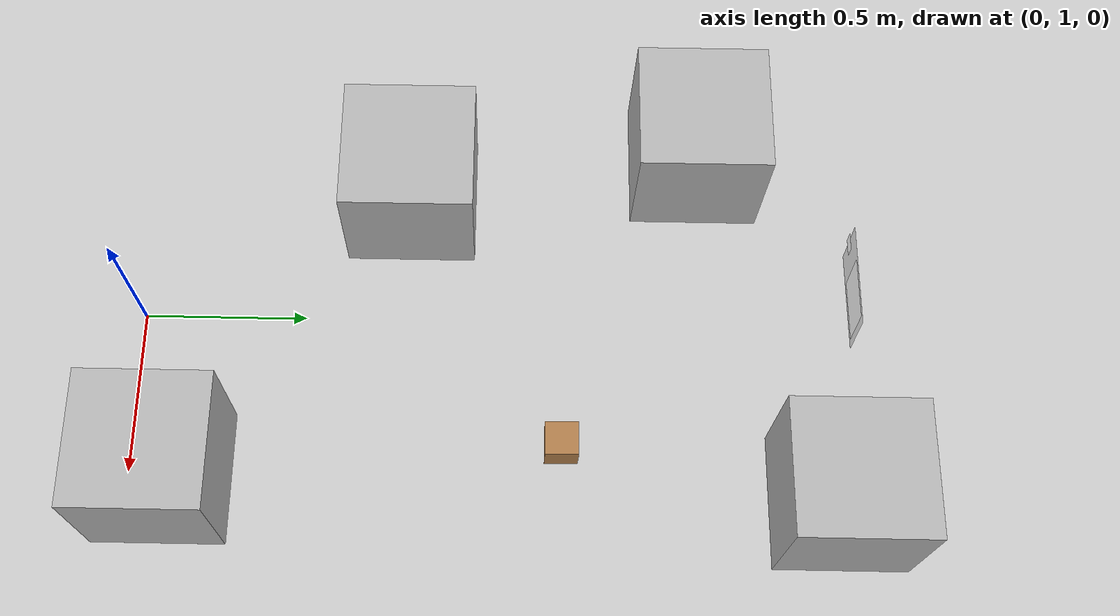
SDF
<sdf version="1.6">
 <world name="default">
  <light name="sun" type="directional">
   <pose>0 0 10 0 -0 0</pose>
   <diffuse>0.8 0.8 0.8 1</diffuse>
   <specular>0.1 0.1 0.1 1</specular>
   <attenuation>
    <range>1000</range>
    <constant>0.9</constant>
    <linear>0.01</linear>
    <quadratic>0.001</quadratic>
   </attenuation>
   <direction>-0.5 0.5 -1</direction>
  </light>
  <model name="ground_plane">
   <static>1</static>
   <link name="link">
    <collision name="collision">
     <geometry><plane><normal>0 0 1</normal><size>100 100</size></plane></geometry>
     <surface><friction><ode><mu>100</mu><mu2>50</mu2></ode></friction></surface>
    </collision>
    <visual name="visual">
     <cast_shadows>0</cast_shadows>
     <geometry><plane><normal>0 0 1</normal><size>100 100</size></plane></geometry>
     <material>
      <script><uri>file://media/materials/scripts/gazebo.material</uri><name>Gazebo/Grey</name></script>
     </material>
    </visual>
   </link>
  </model>
  <gravity>0 0 -9.8</gravity>
  <magnetic_field>6e-06 2.3e-05 -4.2e-05</magnetic_field>
  <atmosphere type="adiabatic"/>
  <physics name="default_physics" default="0" type="ode">
   <max_step_size>0.001</max_step_size>
   <real_time_factor>1</real_time_factor>
   <real_time_update_rate>1000</real_time_update_rate>
  </physics>
  <scene><ambient>0.4 0.4 0.4 1</ambient><background>0.7 0.7 0.7 1</background><shadows>1</shadows></scene>
  <spherical_coordinates>
   <surface_model>EARTH_WGS84</surface_model>
   <latitude_deg>0</latitude_deg>
   <longitude_deg>0</longitude_deg>
   <elevation>0</elevation>
   <heading_deg>0</heading_deg>
  </spherical_coordinates>
  <model name="cardboard_box">
   <pose>-0.407426 1.8165 0.149 0 -0 0</pose>
   <link name="link">
    <inertial>
     <mass>2</mass>
     <inertia>
      <ixx>0.0416667</ixx>
      <ixy>0</ixy>
      <ixz>0</ixz>
      <iyy>0.0566667</iyy>
      <iyz>0</iyz>
      <izz>0.0683333</izz>
     </inertia>
    </inertial>
    <collision name="collision">
     <geometry><box><size>0.5 0.4 0.3</size></box></geometry>
     <surface>
      <friction><ode><mu>1</mu><mu2>1</mu2></ode></friction>
      <contact><ode><kp>1e+07</kp><kd>1</kd><min_depth>0.001</min_depth><max_vel>0.1</max_vel></ode></contact>
     </surface>
    </collision>
    <visual name="visual">
     <pose>0 0 -0.15 0 -0 0</pose>
     <geometry>
      <mesh><uri>model://cardboard_box/meshes/cardboard_box.dae</uri><scale>1 1 1</scale></mesh>
     </geometry>
    </visual>
   </link>
  </model>
  <model name="cardboard_box_0">
   <pose>0.516479 1.11035 0.149 0 -0 0</pose>
   <link name="link">
    <inertial>
     <mass>2</mass>
     <inertia>
      <ixx>0.0416667</ixx>
      <ixy>0</ixy>
      <ixz>0</ixz>
      <iyy>0.0566667</iyy>
      <iyz>0</iyz>
      <izz>0.0683333</izz>
     </inertia>
    </inertial>
    <collision name="collision">
     <geometry><box><size>0.5 0.4 0.3</size></box></geometry>
     <surface>
      <friction><ode><mu>1</mu><mu2>1</mu2></ode></friction>
      <contact><ode><kp>1e+07</kp><kd>1</kd><min_depth>0.001</min_depth><max_vel>0.1</max_vel></ode></contact>
     </surface>
    </collision>
    <visual name="visual">
     <pose>0 0 -0.15 0 -0 0</pose>
     <geometry>
      <mesh><uri>model://cardboard_box/meshes/cardboard_box.dae</uri><scale>1 1 1</scale></mesh>
     </geometry>
    </visual>
   </link>
  </model>
  <model name="wood_cube_10cm">
   <link name="link">
    <pose>0 0 0.05 0 -0 0</pose>
    <inertial>
     <mass>0.5167</mass>
     <inertia>
      <ixx>0.000861167</ixx>
      <ixy>0</ixy>
      <ixz>0</ixz>
      <iyy>0.000861167</iyy>
      <iyz>0</iyz>
      <izz>0.000861167</izz>
     </inertia>
    </inertial>
    <collision name="collision">
     <geometry><box><size>0.1 0.1 0.1</size></box></geometry>
     <surface>
      <contact>
       <poissons_ratio>0.347</poissons_ratio>
       <elastic_modulus>8.8e+09</elastic_modulus>
       <ode><kp>100000</kp><kd>100</kd><max_vel>100</max_vel><min_depth>0.001</min_depth></ode>
      </contact>
      <friction>
       <torsional>
        <coefficient>1</coefficient>
        <use_patch_radius>0</use_patch_radius>
        <surface_radius>0.01</surface_radius>
       </torsional>
      </friction>
     </surface>
    </collision>
    <visual name="visual">
     <geometry><box><size>0.1 0.1 0.1</size></box></geometry>
     <material>
      <script><uri>file://media/materials/scripts/gazebo.material</uri><name>Gazebo/Wood</name></script>
     </material>
    </visual>
   </link>
   <pose>0.402485 2.28925 -0.001013 0 -0 0</pose>
  </model>
  <model name="aruco_visual_marker_7_pad">
   <link name="aruco_visual_marker_7::marker">
    <visual name="visual">
     <geometry><box><size>0.1778 0.1778 1e-05</size></box></geometry>
     <material>
      <script>
       <uri>model://aruco_visual_marker_7/materials/scripts</uri>
       <uri>model://aruco_visual_marker_7/materials/textures</uri>
       <name>ArucoVisualMarker7/Marker</name>
      </script>
      <ambient>1 1 1 1</ambient>
      <diffuse>1 1 1 1</diffuse>
      <specular>0 0 0 1</specular>
      <emissive>1 1 1 0</emissive>
      <shader type="vertex"><normal_map>__default__</normal_map></shader>
     </material>
    </visual>
    <collision name="collision"><geometry><box><size>0.1778 0.1778 1e-05</size></box></geometry></collision>
   </link>
   <link name="aruco_visual_marker_7::marker_pad">
    <pose frame="aruco_visual_marker_7::marker">0 0 -1e-05 0 -0 0</pose>
    <visual name="visual">
     <geometry><box><size>0.1778 0.1778 1e-05</size></box></geometry>
     <material>
      <lighting>1</lighting>
      <script><uri>file://media/materials/scripts/gazebo.material</uri><name>Gazebo/White</name></script>
      <ambient>0.3 0.3 0.3 1</ambient>
      <diffuse>0.7 0.7 0.7 1</diffuse>
      <specular>0.01 0.01 0.01 1</specular>
      <emissive>1 1 1 0</emissive>
      <shader type="vertex"><normal_map>__default__</normal_map></shader>
     </material>
    </visual>
    <collision name="collision"><geometry><box><size>0.1778 0.1778 1e-05</size></box></geometry></collision>
   </link>
   <joint name="aruco_visual_marker_7::marker_JOINT_marker_pad" type="revolute">
    <parent>aruco_visual_marker_7::marker</parent>
    <child>aruco_visual_marker_7::marker_pad</child>
    <axis>
     <xyz>0 0 1</xyz>
     <limit><upper>0</upper><lower>0</lower></limit>
     <use_parent_model_frame>0</use_parent_model_frame>
     <dynamics><spring_reference>0</spring_reference><spring_stiffness>0</spring_stiffness></dynamics>
    </axis>
   </joint>
   <static>1</static>
   <link name="marker_pad_large">
    <pose frame="aruco_visual_marker_7::marker">-0.035 0 -1e-05 0 -0 0</pose>
    <visual name="visual">
     <geometry><box><size>0.297 0.21 1e-05</size></box></geometry>
     <material>
      <lighting>1</lighting>
      <script><uri>file://media/materials/scripts/gazebo.material</uri><name>Gazebo/White</name></script>
      <ambient>0.3 0.3 0.3 1</ambient>
      <diffuse>0.7 0.7 0.7 1</diffuse>
      <specular>0.01 0.01 0.01 1</specular>
      <emissive>1 1 1 0</emissive>
      <shader type="vertex"><normal_map>__default__</normal_map></shader>
     </material>
    </visual>
    <collision name="collision">
     <geometry><box><size>0.297 0.21 1e-05</size></box></geometry>
     <surface>
      <friction>
       <ode><mu>1</mu><mu2>1</mu2><fdir1>0 0 0</fdir1><slip1>0</slip1><slip2>0</slip2></ode>
       <torsional>
        <coefficient>1</coefficient>
        <patch_radius>0</patch_radius>
        <surface_radius>0</surface_radius>
        <use_patch_radius>1</use_patch_radius>
        <ode><slip>0</slip></ode>
       </torsional>
      </friction>
      <bounce><restitution_coefficient>0</restitution_coefficient><threshold>1e+06</threshold></bounce>
      <contact>
       <collide_without_contact>0</collide_without_contact>
       <collide_without_contact_bitmask>1</collide_without_contact_bitmask>
       <collide_bitmask>1</collide_bitmask>
       <ode>
        <soft_cfm>0</soft_cfm>
        <soft_erp>0.2</soft_erp>
        <kp>1e+13</kp>
        <kd>1</kd>
        <max_vel>0.01</max_vel>
        <min_depth>0</min_depth>
       </ode>
       <bullet>
        <split_impulse>1</split_impulse>
        <split_impulse_penetration_threshold>-0.01</split_impulse_penetration_threshold>
        <soft_cfm>0</soft_cfm>
        <soft_erp>0.2</soft_erp>
        <kp>1e+13</kp>
        <kd>1</kd>
       </bullet>
      </contact>
     </surface>
    </collision>
   </link>
   <link name="marker_num">
    <pose frame="marker_pad_large">-0.14 0 1e-05 0 -0 0</pose>
    <visual name="visual">
     <geometry><box><size>0.05 0.05 1e-05</size></box></geometry>
     <material>
      <script>
       <uri>model://aruco_visual_marker_7_pad/materials/scripts</uri>
       <uri>model://aruco_visual_marker_7_pad/materials/textures</uri>
       <name>ArucoVisualMarker7/Num</name>
      </script>
      <ambient>1 1 1 1</ambient>
      <diffuse>1 1 1 1</diffuse>
      <specular>0 0 0 1</specular>
      <emissive>1 1 1 0</emissive>
      <shader type="vertex"><normal_map>__default__</normal_map></shader>
     </material>
    </visual>
    <collision name="collision">
     <geometry><box><size>0.05 0.05 1e-05</size></box></geometry>
     <surface>
      <friction>
       <ode><mu>1</mu><mu2>1</mu2><fdir1>0 0 0</fdir1><slip1>0</slip1><slip2>0</slip2></ode>
       <torsional>
        <coefficient>1</coefficient>
        <patch_radius>0</patch_radius>
        <surface_radius>0</surface_radius>
        <use_patch_radius>1</use_patch_radius>
        <ode><slip>0</slip></ode>
       </torsional>
      </friction>
      <bounce><restitution_coefficient>0</restitution_coefficient><threshold>1e+06</threshold></bounce>
      <contact>
       <collide_without_contact>0</collide_without_contact>
       <collide_without_contact_bitmask>1</collide_without_contact_bitmask>
       <collide_bitmask>1</collide_bitmask>
       <ode>
        <soft_cfm>0</soft_cfm>
        <soft_erp>0.2</soft_erp>
        <kp>1e+13</kp>
        <kd>1</kd>
        <max_vel>0.01</max_vel>
        <min_depth>0</min_depth>
       </ode>
       <bullet>
        <split_impulse>1</split_impulse>
        <split_impulse_penetration_threshold>-0.01</split_impulse_penetration_threshold>
        <soft_cfm>0</soft_cfm>
        <soft_erp>0.2</soft_erp>
        <kp>1e+13</kp>
        <kd>1</kd>
       </bullet>
      </contact>
     </surface>
    </collision>
   </link>
   <joint name="marker_JOINT_marker_pad_large" type="revolute">
    <parent>aruco_visual_marker_7::marker</parent>
    <child>marker_pad_large</child>
    <axis>
     <xyz>0 0 1</xyz>
     <limit><upper>0</upper><lower>0</lower></limit>
     <use_parent_model_frame>0</use_parent_model_frame>
     <dynamics><spring_reference>0</spring_reference><spring_stiffness>0</spring_stiffness></dynamics>
    </axis>
   </joint>
   <joint name="pad_large_JOINT_marker_num" type="revolute">
    <parent>marker_pad_large</parent>
    <child>marker_num</child>
    <axis>
     <xyz>0 0 1</xyz>
     <limit><upper>0</upper><lower>0</lower></limit>
     <use_parent_model_frame>0</use_parent_model_frame>
     <dynamics><spring_reference>0</spring_reference><spring_stiffness>0</spring_stiffness></dynamics>
    </axis>
   </joint>
   <static>1</static>
   <pose>0.033166 3.12589 0.305787 1.62018 -0 0</pose>
  </model>
  <model name="cardboard_box_1">
   <pose>-0.553394 2.70666 0.149 0 -0 0</pose>
   <link name="link">
    <inertial>
     <mass>2</mass>
     <inertia>
      <ixx>0.0416667</ixx>
      <ixy>0</ixy>
      <ixz>0</ixz>
      <iyy>0.0566667</iyy>
      <iyz>0</iyz>
      <izz>0.0683333</izz>
     </inertia>
    </inertial>
    <collision name="collision">
     <geometry><box><size>0.5 0.4 0.3</size></box></geometry>
     <surface>
      <friction><ode><mu>1</mu><mu2>1</mu2></ode></friction>
      <contact><ode><kp>1e+07</kp><kd>1</kd><min_depth>0.001</min_depth><max_vel>0.1</max_vel></ode></contact>
     </surface>
    </collision>
    <visual name="visual">
     <pose>0 0 -0.15 0 -0 0</pose>
     <geometry>
      <mesh><uri>model://cardboard_box/meshes/cardboard_box.dae</uri><scale>1 1 1</scale></mesh>
     </geometry>
    </visual>
   </link>
  </model>
  <model name="cardboard_box_2">
   <pose>0.560524 3.10195 0.14951 2e-06 -2e-06 -0</pose>
   <link name="link">
    <inertial>
     <mass>2</mass>
     <inertia>
      <ixx>0.0416667</ixx>
      <ixy>0</ixy>
      <ixz>0</ixz>
      <iyy>0.0566667</iyy>
      <iyz>0</iyz>
      <izz>0.0683333</izz>
     </inertia>
    </inertial>
    <collision name="collision">
     <geometry><box><size>0.5 0.4 0.3</size></box></geometry>
     <surface>
      <friction><ode><mu>1</mu><mu2>1</mu2></ode></friction>
      <contact><ode><kp>1e+07</kp><kd>1</kd><min_depth>0.001</min_depth><max_vel>0.1</max_vel></ode></contact>
     </surface>
    </collision>
    <visual name="visual">
     <pose>0 0 -0.15 0 -0 0</pose>
     <geometry>
      <mesh><uri>model://cardboard_box/meshes/cardboard_box.dae</uri><scale>1 1 1</scale></mesh>
     </geometry>
    </visual>
   </link>
  </model>
 </world>
</sdf>
